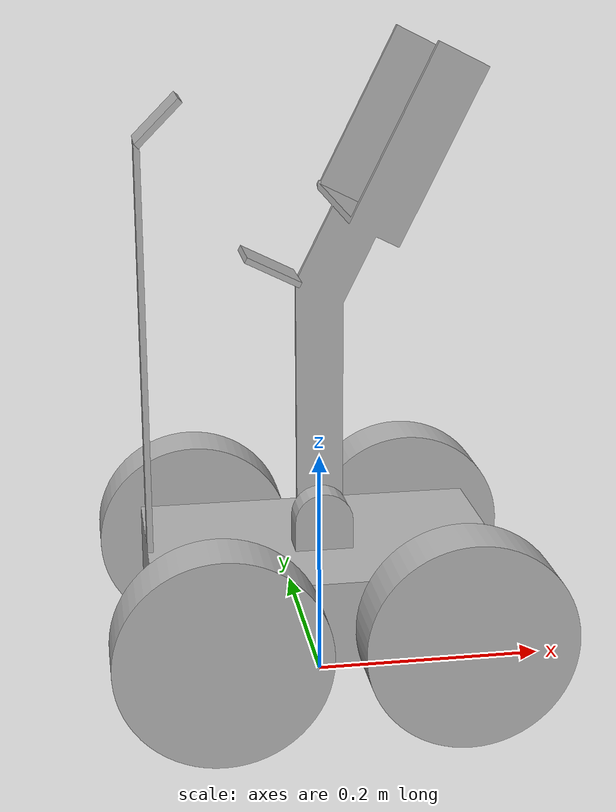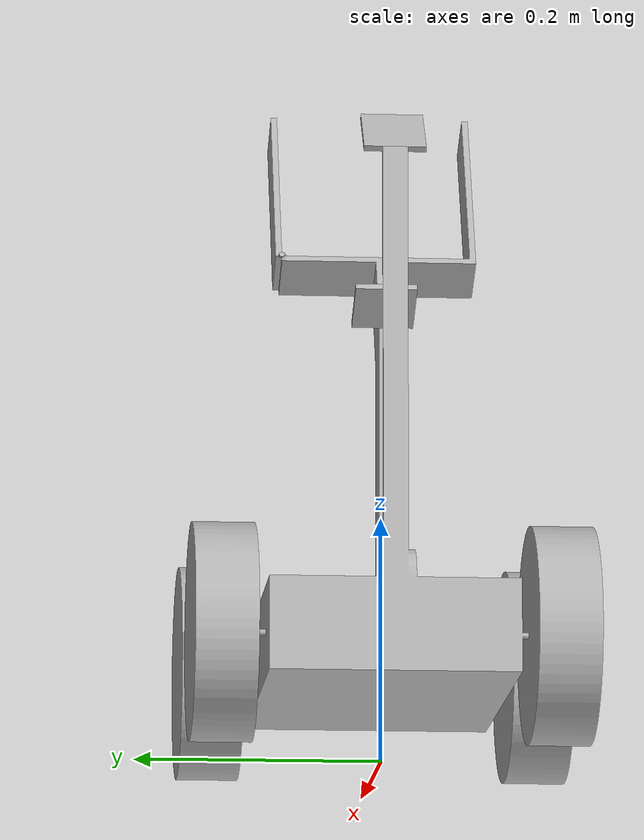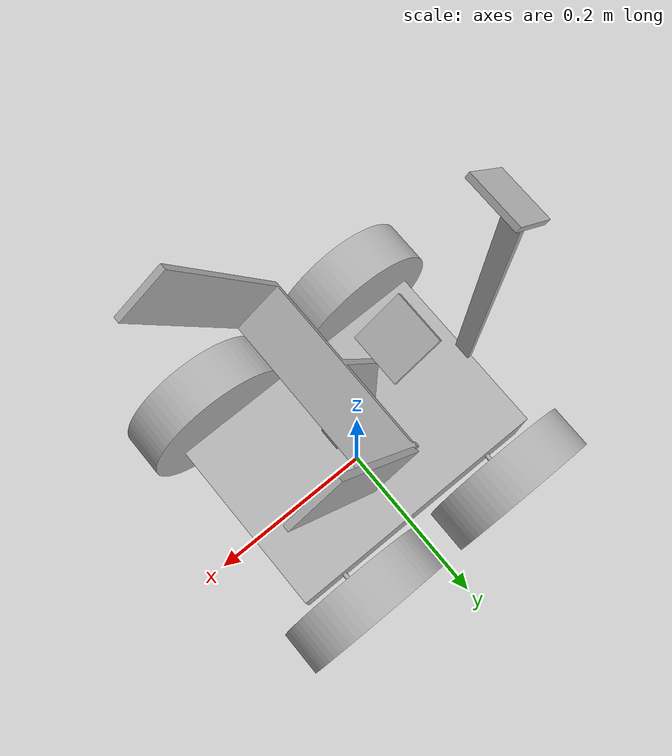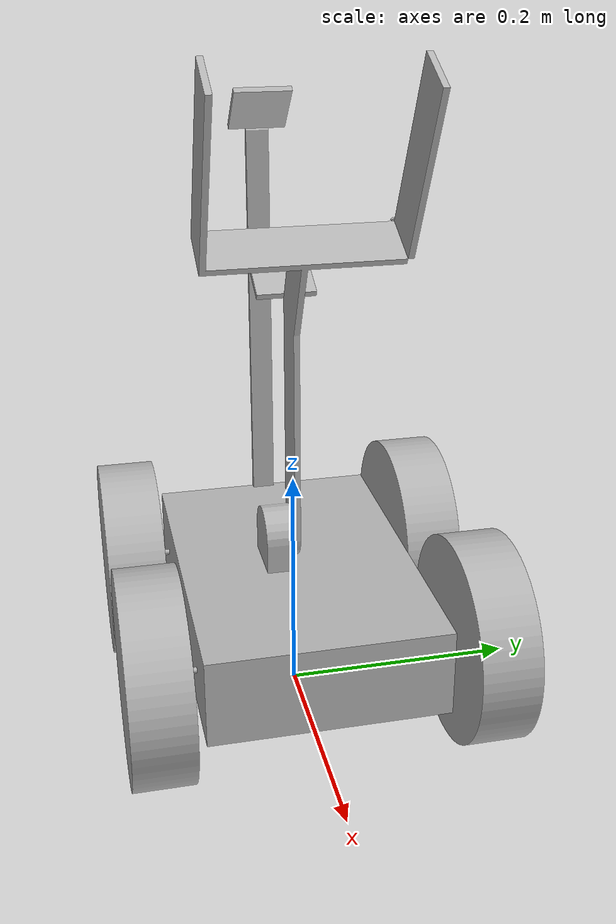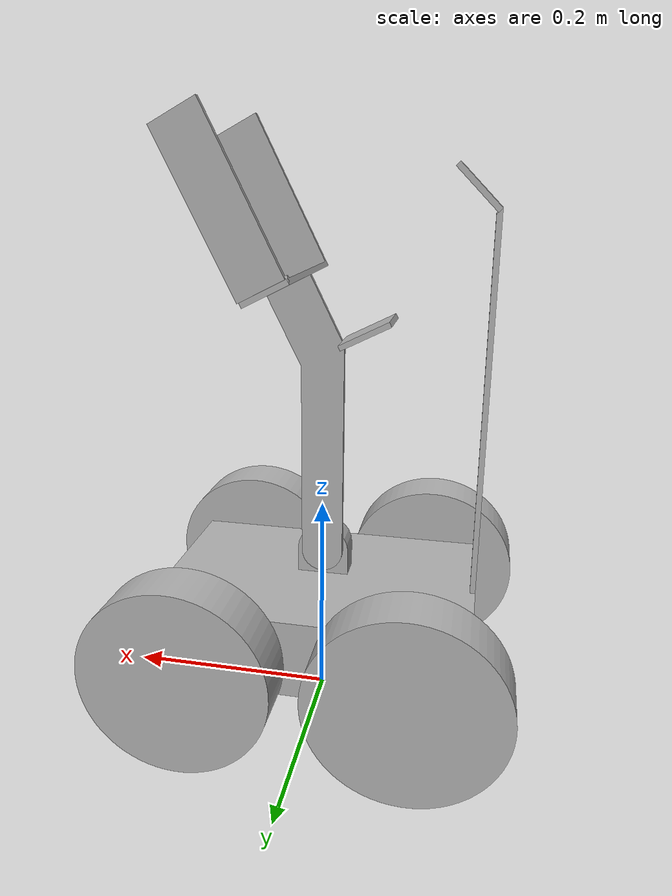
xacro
<?xml version="1.0" ?>
<robot name="manbot" xmlns:xacro="http://www.ros.org/wiki/xacro">

<xacro:include filename="$(find manbot_description)/urdf/materials.xacro" />
<xacro:include filename="$(find manbot_description)/urdf/manbot.trans" />
<xacro:include filename="$(find manbot_description)/urdf/manbot.gazebo" />

<link name="base_link">
  <inertial>
    <origin rpy="0 0 0" xyz="-0.008294335423910686 -0.00043545826318449623 0.10129461321029191"/>
    <mass value="4.851237574824673"/>
    <inertia ixx="0.039908" ixy="1.8e-05" ixz="0.007946" iyy="0.067042" iyz="0.00011" izz="0.069092"/>
  </inertial>
  <visual>
    <origin rpy="0 0 0" xyz="0 0 0"/>
    <geometry>
      <mesh filename="package://manbot_description/meshes/base_link.stl" scale="0.001 0.001 0.001"/>
    </geometry>
    <material name="silver"/>
  </visual>
  <collision>
    <origin rpy="0 0 0" xyz="0 0 0"/>
    <geometry>
      <mesh filename="package://manbot_description/meshes/base_link.stl" scale="0.001 0.001 0.001"/>
    </geometry>
  </collision>
</link>

<link name="rf_wheel_1">
  <inertial>
    <origin rpy="0 0 0" xyz="9.71445146547012e-17 -0.02499999999999998 -1.3877787807814457e-17"/>
    <mass value="1.1477709799721683"/>
    <inertia ixx="0.003419" ixy="0.0" ixz="0.0" iyy="0.005828" iyz="0.0" izz="0.003419"/>
  </inertial>
  <visual>
    <origin rpy="0 0 0" xyz="-0.1 0.11 -0.0875"/>
    <geometry>
      <mesh filename="package://manbot_description/meshes/rf_wheel_1.stl" scale="0.001 0.001 0.001"/>
    </geometry>
    <material name="silver"/>
  </visual>
  <collision>
    <origin rpy="0 0 0" xyz="-0.1 0.11 -0.0875"/>
    <geometry>
      <mesh filename="package://manbot_description/meshes/rf_wheel_1.stl" scale="0.001 0.001 0.001"/>
    </geometry>
  </collision>
</link>

<link name="rb_wheel_1">
  <inertial>
    <origin rpy="0 0 0" xyz="1.249000902703301e-16 -0.02499999999999998 -1.3877787807814457e-17"/>
    <mass value="1.1477709799721683"/>
    <inertia ixx="0.003419" ixy="0.0" ixz="0.0" iyy="0.005828" iyz="0.0" izz="0.003419"/>
  </inertial>
  <visual>
    <origin rpy="0 0 0" xyz="0.1 0.11 -0.0875"/>
    <geometry>
      <mesh filename="package://manbot_description/meshes/rb_wheel_1.stl" scale="0.001 0.001 0.001"/>
    </geometry>
    <material name="silver"/>
  </visual>
  <collision>
    <origin rpy="0 0 0" xyz="0.1 0.11 -0.0875"/>
    <geometry>
      <mesh filename="package://manbot_description/meshes/rb_wheel_1.stl" scale="0.001 0.001 0.001"/>
    </geometry>
  </collision>
</link>

<link name="lf_wheel_1">
  <inertial>
    <origin rpy="0 0 0" xyz="9.71445146547012e-17 0.024999999999999953 -1.3877787807814457e-17"/>
    <mass value="1.1477709799721683"/>
    <inertia ixx="0.003419" ixy="-0.0" ixz="0.0" iyy="0.005828" iyz="0.0" izz="0.003419"/>
  </inertial>
  <visual>
    <origin rpy="0 0 0" xyz="-0.1 -0.11 -0.0875"/>
    <geometry>
      <mesh filename="package://manbot_description/meshes/lf_wheel_1.stl" scale="0.001 0.001 0.001"/>
    </geometry>
    <material name="silver"/>
  </visual>
  <collision>
    <origin rpy="0 0 0" xyz="-0.1 -0.11 -0.0875"/>
    <geometry>
      <mesh filename="package://manbot_description/meshes/lf_wheel_1.stl" scale="0.001 0.001 0.001"/>
    </geometry>
  </collision>
</link>

<link name="lb_wheel_1">
  <inertial>
    <origin rpy="0 0 0" xyz="0.0 0.024999999999999925 -1.3877787807814457e-17"/>
    <mass value="1.1477709799721683"/>
    <inertia ixx="0.003419" ixy="0.0" ixz="0.0" iyy="0.005828" iyz="-0.0" izz="0.003419"/>
  </inertial>
  <visual>
    <origin rpy="0 0 0" xyz="0.1 -0.11 -0.0875"/>
    <geometry>
      <mesh filename="package://manbot_description/meshes/lb_wheel_1.stl" scale="0.001 0.001 0.001"/>
    </geometry>
    <material name="silver"/>
  </visual>
  <collision>
    <origin rpy="0 0 0" xyz="0.1 -0.11 -0.0875"/>
    <geometry>
      <mesh filename="package://manbot_description/meshes/lb_wheel_1.stl" scale="0.001 0.001 0.001"/>
    </geometry>
  </collision>
</link>

<link name="gripper_1">
  <inertial>
    <origin rpy="0 0 0" xyz="0.0286434200634247 -0.017913622514405973 0.2176105087984376"/>
    <mass value="0.9981920145300498"/>
    <inertia ixx="0.012661" ixy="0.000785" ixz="-0.002548" iyy="0.011825" iyz="0.002275" izz="0.002701"/>
  </inertial>
  <visual>
    <origin rpy="0 0 0" xyz="-0.0 0.0025 -0.15"/>
    <geometry>
      <mesh filename="package://manbot_description/meshes/gripper_1.stl" scale="0.001 0.001 0.001"/>
    </geometry>
    <material name="silver"/>
  </visual>
  <collision>
    <origin rpy="0 0 0" xyz="-0.0 0.0025 -0.15"/>
    <geometry>
      <mesh filename="package://manbot_description/meshes/gripper_1.stl" scale="0.001 0.001 0.001"/>
    </geometry>
  </collision>
</link>

<link name="gripper_camera_1">
  <inertial>
    <origin rpy="0 0 0" xyz="-0.021242645786247964 -2.27373675443231e-17 0.013416407864998758"/>
    <mass value="0.09812500000000042"/>
    <inertia ixx="2.5e-05" ixy="-0.0" ixz="8e-06" iyy="2.1e-05" iyz="-0.0" izz="3.7e-05"/>
  </inertial>
  <visual>
    <origin rpy="0 0 0" xyz="0.02 -0.0 -0.355"/>
    <geometry>
      <mesh filename="package://manbot_description/meshes/gripper_camera_1.stl" scale="0.001 0.001 0.001"/>
    </geometry>
    <material name="silver"/>
  </visual>
  <collision>
    <origin rpy="0 0 0" xyz="0.02 -0.0 -0.355"/>
    <geometry>
      <mesh filename="package://manbot_description/meshes/gripper_camera_1.stl" scale="0.001 0.001 0.001"/>
    </geometry>
  </collision>
</link>

<link name="main_camera_1">
  <inertial>
    <origin rpy="0 0 0" xyz="0.019445436482630196 0.0 0.015909902576697388"/>
    <mass value="0.09812500000000007"/>
    <inertia ixx="3.1e-05" ixy="0.0" ixz="-1e-05" iyy="2.1e-05" iyz="-0.0" izz="3.1e-05"/>
  </inertial>
  <visual>
    <origin rpy="0 0 0" xyz="0.15 -0.0 -0.475"/>
    <geometry>
      <mesh filename="package://manbot_description/meshes/main_camera_1.stl" scale="0.001 0.001 0.001"/>
    </geometry>
    <material name="silver"/>
  </visual>
  <collision>
    <origin rpy="0 0 0" xyz="0.15 -0.0 -0.475"/>
    <geometry>
      <mesh filename="package://manbot_description/meshes/main_camera_1.stl" scale="0.001 0.001 0.001"/>
    </geometry>
  </collision>
</link>

<link name="finger_1">
  <inertial>
    <origin rpy="0 0 0" xyz="0.05354104886173708 0.0024999999999996414 0.05708207388161585"/>
    <mass value="0.2632971732049946"/>
    <inertia ixx="0.000404" ixy="0.0" ixz="-0.00018" iyy="0.000538" iyz="0.0" izz="0.000134"/>
  </inertial>
  <visual>
    <origin rpy="0 0 0" xyz="-0.013541 -0.08 -0.422082"/>
    <geometry>
      <mesh filename="package://manbot_description/meshes/finger_1.stl" scale="0.001 0.001 0.001"/>
    </geometry>
    <material name="silver"/>
  </visual>
  <collision>
    <origin rpy="0 0 0" xyz="-0.013541 -0.08 -0.422082"/>
    <geometry>
      <mesh filename="package://manbot_description/meshes/finger_1.stl" scale="0.001 0.001 0.001"/>
    </geometry>
  </collision>
</link>

<joint name="rf_motor" type="continuous">
  <origin rpy="0 0 0" xyz="0.1 -0.11 0.0875"/>
  <parent link="base_link"/>
  <child link="rf_wheel_1"/>
  <axis xyz="0.0 1.0 0.0"/>
</joint>

<joint name="rb_motor" type="continuous">
  <origin rpy="0 0 0" xyz="-0.1 -0.11 0.0875"/>
  <parent link="base_link"/>
  <child link="rb_wheel_1"/>
  <axis xyz="0.0 1.0 0.0"/>
</joint>

<joint name="lf_motor" type="continuous">
  <origin rpy="0 0 0" xyz="0.1 0.11 0.0875"/>
  <parent link="base_link"/>
  <child link="lf_wheel_1"/>
  <axis xyz="-0.0 1.0 0.0"/>
</joint>

<joint name="lb_motor" type="continuous">
  <origin rpy="0 0 0" xyz="-0.1 0.11 0.0875"/>
  <parent link="base_link"/>
  <child link="lb_wheel_1"/>
  <axis xyz="-0.0 1.0 0.0"/>
</joint>

<joint name="gripper_joint" type="revolute">
  <origin rpy="0 0 0" xyz="0.0 -0.0025 0.15"/>
  <parent link="base_link"/>
  <child link="gripper_1"/>
  <axis xyz="-0.0 1.0 0.0"/>
  <limit effort="100" lower="-0.261799" upper="1.570796" velocity="100"/>
</joint>
<joint name="gripper_camera_joint" type="fixed">
  <origin rpy="0 0 0" xyz="-0.02 0.0025 0.205"/>
  <parent link="gripper_1"/>
  <child link="gripper_camera_1"/>
</joint>

<joint name="main_camera_joint" type="fixed">
  <origin rpy="0 0 0" xyz="-0.15 0.0 0.475"/>
  <parent link="base_link"/>
  <child link="main_camera_1"/>
</joint>

<joint name="finger_joint" type="revolute">
  <origin rpy="0 0 0" xyz="0.013541 0.0825 0.272082"/>
  <parent link="gripper_1"/>
  <child link="finger_1"/>
  <axis xyz="0.894427 0.0 -0.447214"/>
  <limit effort="100" lower="-1.570796" upper="1.570796" velocity="100"/>
</joint>
</robot>

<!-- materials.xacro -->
<robot name="manbot" xmlns:xacro="http://www.ros.org/wiki/xacro" >

<material name="silver">
  <color rgba="0.700 0.700 0.700 1.000"/>
</material>

</robot>

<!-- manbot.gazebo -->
<robot name="manbot" xmlns:xacro="http://www.ros.org/wiki/xacro" >

<xacro:property name="body_color" value="Gazebo/Silver" />

<gazebo>
  <plugin filename="libgazebo_ros_control.so" name="gazebo_ros_control">
    <robotNamespace>/manbot</robotNamespace>
    <robotSimType>gazebo_ros_control/DefaultRobotHWSim</robotSimType>
    <legacyModeNS>true</legacyModeNS>
  </plugin>
</gazebo>

<gazebo>
  <plugin name="skid_steer_drive_controller" filename="libgazebo_ros_skid_steer_drive.so">
    <updateRate>100.0</updateRate>
    <robotNamespace>/</robotNamespace>
    <leftFrontJoint>lf_motor</leftFrontJoint>
    <rightFrontJoint>rf_motor</rightFrontJoint>
    <leftRearJoint>lb_motor</leftRearJoint>
    <rightRearJoint>rb_motor</rightRearJoint>
    <wheelSeparation>0.270</wheelSeparation>
    <wheelDiameter>0.175</wheelDiameter>
    <robotBaseFrame>base_link</robotBaseFrame>
    <torque>20</torque>
    <topicName>/cmd_vel</topicName>
    <broadcastTF>false</broadcastTF>
  </plugin>
</gazebo>

<gazebo reference="base_link">
  <material>${body_color}</material>
  <mu1>0.2</mu1>
  <mu2>0.2</mu2>
  <selfCollide>true</selfCollide>
  <gravity>true</gravity>
</gazebo>

<gazebo reference="rf_wheel_1">
  <material>${body_color}</material>
  <mu1>10.0</mu1>
  <mu2>10.0</mu2>
  <selfCollide>true</selfCollide>
</gazebo>

<gazebo reference="rb_wheel_1">
  <material>${body_color}</material>
  <mu1>10.0</mu1>
  <mu2>10.0</mu2>
  <selfCollide>true</selfCollide>
</gazebo>

<gazebo reference="lf_wheel_1">
  <material>${body_color}</material>
  <mu1>10.0</mu1>
  <mu2>10.0</mu2>
  <selfCollide>true</selfCollide>
</gazebo>

<gazebo reference="lb_wheel_1">
  <material>${body_color}</material>
  <mu1>10.0</mu1>
  <mu2>10.0</mu2>
  <selfCollide>true</selfCollide>
</gazebo>

<gazebo reference="gripper_1">
  <material>${body_color}</material>
  <mu1>0.2</mu1>
  <mu2>0.2</mu2>
  <selfCollide>true</selfCollide>
</gazebo>

<gazebo reference="gripper_camera_1">
  <material>${body_color}</material>
  <mu1>0.2</mu1>
  <mu2>0.2</mu2>
  <selfCollide>true</selfCollide>
</gazebo>

<gazebo reference="main_camera_1">
  <material>${body_color}</material>
  <mu1>0.2</mu1>
  <mu2>0.2</mu2>
  <selfCollide>true</selfCollide>
</gazebo>

<gazebo reference="finger_1">
  <material>${body_color}</material>
  <mu1>0.2</mu1>
  <mu2>0.2</mu2>
  <selfCollide>true</selfCollide>
</gazebo>

</robot>
